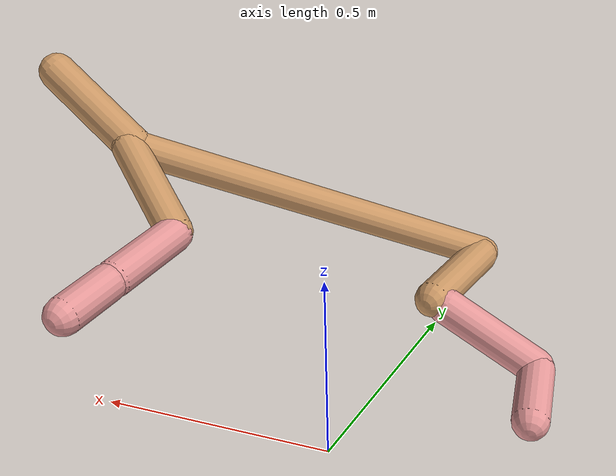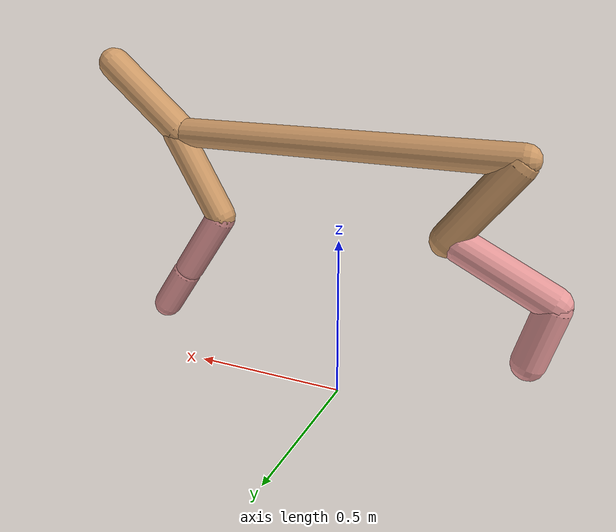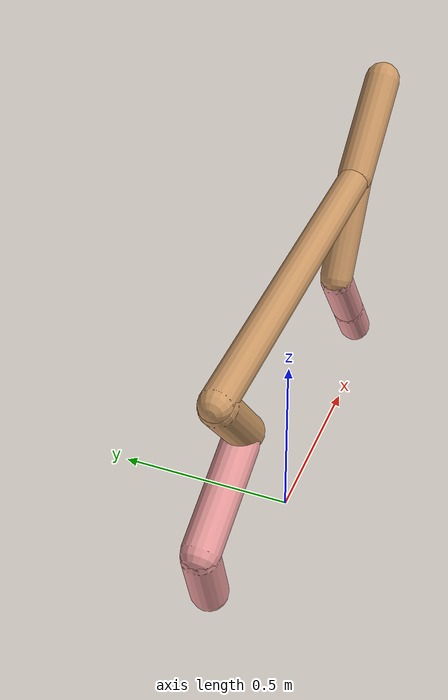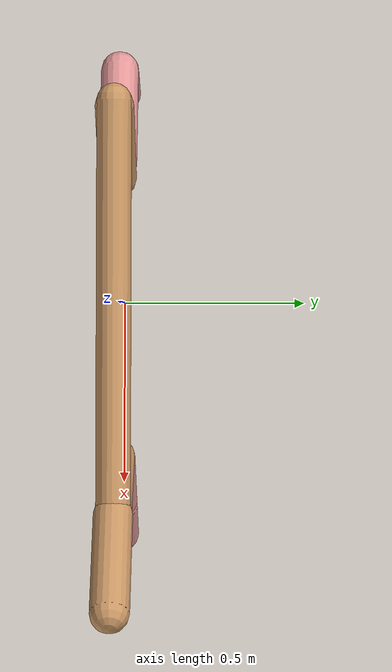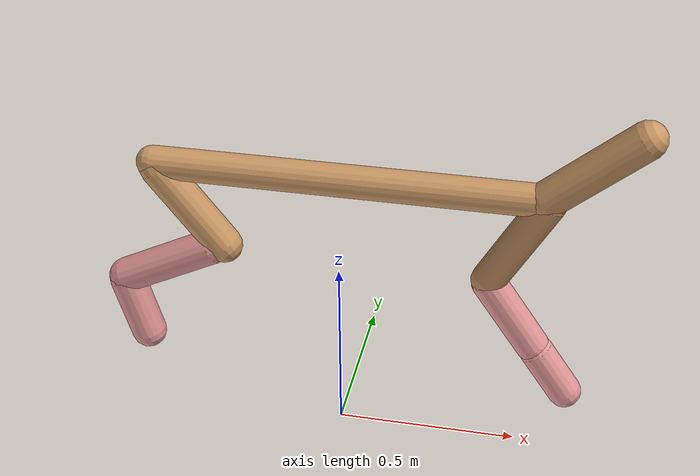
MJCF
<mujoco model="cheetah">
  <compiler angle="radian" coordinate="local" inertiafromgeom="true" settotalmass="14" />
  <default>
    <joint armature=".1" damping=".01" limited="true" solimplimit="0 .8 .03" solreflimit=".02 1" stiffness="8" />
    <geom conaffinity="0" condim="3" contype="1" friction="0.8 .1 .1" rgba="0.8 0.6 .4 1" solimp="0.0 0.8 0.01" solref="0.02 1" />
    <motor ctrllimited="true" ctrlrange="-1 1" />
  </default>
  <size nstack="300000" nuser_geom="1" />
  <option gravity="0 0 -9.81" timestep="0.01" />
  <worldbody>
    <body name="torso" pos="0.0 0.0 0.7847429651820186">
      <joint armature="0" axis="1 0 0" damping="0" limited="false" name="ignorex" pos="0 0 0" stiffness="0" type="slide" />
      <joint armature="0" axis="0 0 1" damping="0" limited="false" name="ignorez" pos="0 0 0" stiffness="0" type="slide" />
      <joint armature="0" axis="0 1 0" damping="0" limited="false" name="ignorey" pos="0 0 0" stiffness="0" type="hinge" />
      <geom fromto="-0.5 0.0 0.0 0.5499519694152344 0.0 0.0" name="torso" size="0.04391903418272134" type="capsule" />
      <geom axisangle="0 1 0 .87" name="head" pos="0.6499519694152344 0.0 0.1" size="0.04968712613648397 0.15" type="capsule" />

      <body name="bthigh" pos="-.5 0 0">
        <joint axis="0 1 0" damping="6" name="bthigh" pos="0 0 0" range="-.52 1.05" stiffness="240" type="hinge" />
        <geom axisangle="0 1 0 -3.8" name="bthigh" pos="0.09701332365619501 0.0 -0.1261173207530535" size="0.04928979459285858 0.1401014865808785" type="capsule" />
        <body name="bshin" pos="0.15402664731239002 0.0 -0.24223464150610702">
          <joint axis="0 1 0" damping="4.5" name="bshin" pos="0 0 0" range="-.785 .785" stiffness="180" type="hinge" />
          <geom axisangle="0 1 0 -2.03" name="bshin" pos="-0.13546755489909634 0.0 -0.06773377744954817" rgba="0.9 0.6 0.6 1" size="0.04928979459285858 0.14493257232504675" type="capsule" />
          <body name="bfoot" pos="-0.2709351097981927 0.0 -0.13546755489909634">
            <joint axis="0 1 0" damping="3" name="bfoot" pos="0 0 0" range="-.4 .785" stiffness="120" type="hinge" />
            <geom axisangle="0 1 0 -.27" name="bfoot" pos="0.029061709890677804 0.0 -0.09396619531319157" rgba="0.9 0.6 0.6 1" size="0.04928979459285858 0.09082441199036263" type="capsule" />
            <inertial mass="10" />
          </body>
        </body>
      </body>
      <body name="fthigh" pos="0.5499519694152344 0.0 0.0">
        <joint axis="0 1 0" damping="4.5" name="fthigh" pos="0 0 0" range="-1.5 0.8" stiffness="180" type="hinge" />
        <geom axisangle="0 1 0 .52" name="fthigh" pos="-0.07594041505722247 0.0 -0.13018356866952424" size="0.0462445607727546 0.14478955477950678" type="capsule" />
        <body name="fshin" pos="-0.15188083011444495 0.0 -0.2603671373390485">
          <joint axis="0 1 0" damping="3" name="fshin" pos="0 0 0" range="-1.2 1.1" stiffness="120" type="hinge" />
          <geom axisangle="0 1 0 -.6" name="fshin" pos="0.0705013784472765 0.0 -0.09761729323469052" rgba="0.9 0.6 0.6 1" size="0.0462445607727546 0.11539618651599787" type="capsule" />
          <body name="ffoot" pos="0.141002756894553 0.0 -0.19523458646938105">
            <joint axis="0 1 0" damping="1.5" name="ffoot" pos="0 0 0" range="-3.1 -0.3" stiffness="60" type="hinge" />
            <geom axisangle="0 1 0 -.6" name="ffoot" pos="0.04835541644485507 0.0 -0.07521953669199678" rgba="0.9 0.6 0.6 1" size="0.0462445607727546 0.07620502883131935" type="capsule" />
            <inertial mass="10" />
          </body>
        </body>
      </body>
    </body>
  </worldbody>
  <actuator>
    <motor gear="120" joint="bthigh" name="bthigh" />
    <motor gear="90" joint="bshin" name="bshin" />
    <motor gear="60" joint="bfoot" name="bfoot" />
    <motor gear="120" joint="fthigh" name="fthigh" />
    <motor gear="60" joint="fshin" name="fshin" />
    <motor gear="30" joint="ffoot" name="ffoot" />
  </actuator>
</mujoco>
